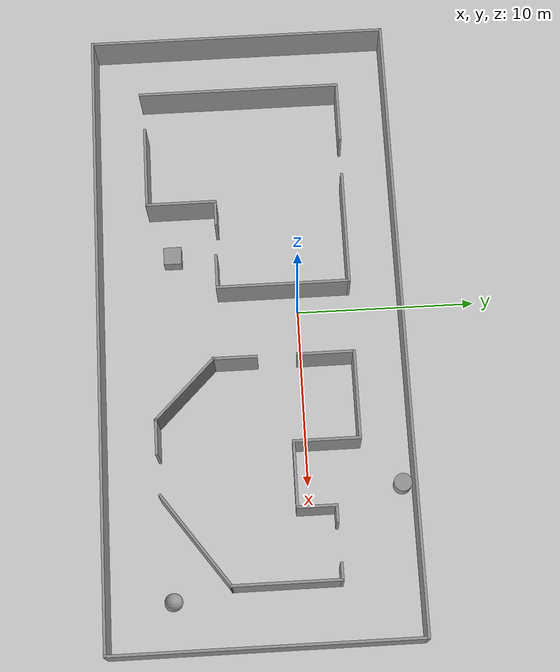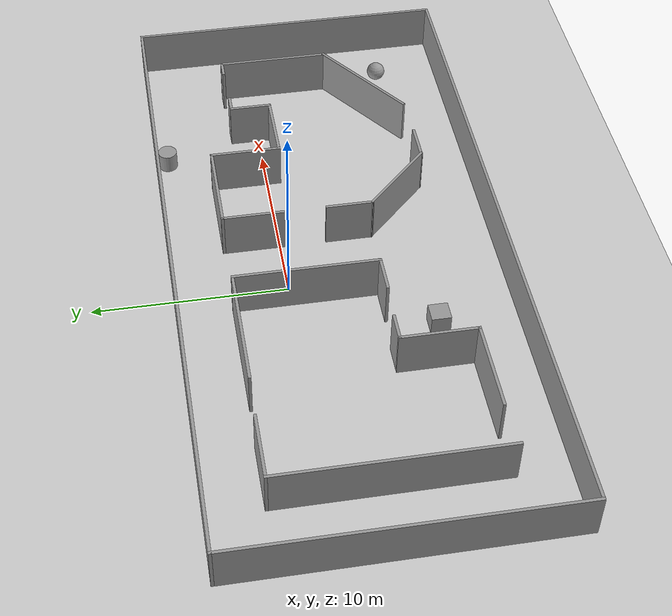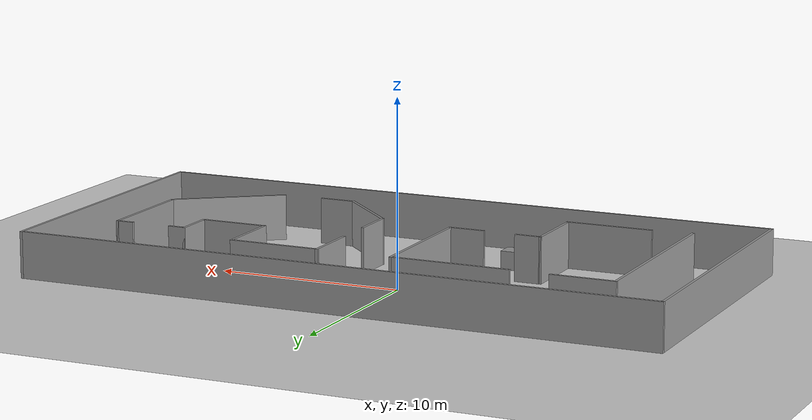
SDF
<sdf version="1.6">
 <world name="default">
  <light name="sun" type="directional">
   <pose>0 0 10 0 -0 0</pose>
   <diffuse>0.8 0.8 0.8 1</diffuse>
   <specular>0.2 0.2 0.2 1</specular>
   <attenuation>
    <range>1000</range>
    <constant>0.9</constant>
    <linear>0.01</linear>
    <quadratic>0.001</quadratic>
   </attenuation>
   <direction>-0.5 0.1 -0.9</direction>
  </light>
  <model name="ground_plane">
   <static>1</static>
   <link name="link">
    <collision name="collision">
     <geometry><plane><normal>0 0 1</normal><size>100 100</size></plane></geometry>
     <surface>
      <contact><collide_bitmask>65535</collide_bitmask></contact>
      <friction><ode><mu>100</mu><mu2>50</mu2></ode></friction>
     </surface>
    </collision>
    <visual name="visual">
     <cast_shadows>0</cast_shadows>
     <geometry><plane><normal>0 0 1</normal><size>100 100</size></plane></geometry>
     <material>
      <script><uri>file://media/materials/scripts/gazebo.material</uri><name>Gazebo/Grey</name></script>
     </material>
    </visual>
   </link>
  </model>
  <gravity>0 0 -9.8</gravity>
  <magnetic_field>6e-06 2.3e-05 -4.2e-05</magnetic_field>
  <atmosphere type="adiabatic"/>
  <physics name="default_physics" default="0" type="ode">
   <max_step_size>0.001</max_step_size>
   <real_time_factor>1</real_time_factor>
   <real_time_update_rate>1000</real_time_update_rate>
  </physics>
  <scene><ambient>0.4 0.4 0.4 1</ambient><background>0.7 0.7 0.7 1</background><shadows>1</shadows></scene>
  <audio><device>default</device></audio>
  <spherical_coordinates>
   <surface_model>EARTH_WGS84</surface_model>
   <latitude_deg>0</latitude_deg>
   <longitude_deg>0</longitude_deg>
   <elevation>0</elevation>
   <heading_deg>0</heading_deg>
  </spherical_coordinates>
  <model name="openfloorplan">
   <pose>1.2197 -2.65231 0 0 -0 0</pose>
   <link name="Wall_11">
    <collision name="Wall_11_Collision">
     <geometry><box><size>11.5 0.15 2.5</size></box></geometry>
     <pose>0 0 1.25 0 -0 0</pose>
    </collision>
    <visual name="Wall_11_Visual">
     <pose>0 0 1.25 0 -0 0</pose>
     <geometry><box><size>11.5 0.15 2.5</size></box></geometry>
     <material>
      <script><uri>file://media/materials/scripts/gazebo.material</uri><name>Gazebo/Grey</name></script>
      <ambient>1 1 1 1</ambient>
     </material>
     <meta><layer>0</layer></meta>
    </visual>
    <pose>-14.1538 -0.047052 0 0 -0 -1.5708</pose>
   </link>
   <link name="Wall_13">
    <collision name="Wall_13_Collision">
     <geometry><box><size>4.75 0.15 2.5</size></box></geometry>
     <pose>0 0 1.25 0 -0 0</pose>
    </collision>
    <visual name="Wall_13_Visual">
     <pose>0 0 1.25 0 -0 0</pose>
     <geometry><box><size>4.75 0.15 2.5</size></box></geometry>
     <material>
      <script><uri>file://media/materials/scripts/gazebo.material</uri><name>Gazebo/Grey</name></script>
      <ambient>1 1 1 1</ambient>
     </material>
     <meta><layer>0</layer></meta>
    </visual>
    <pose>-9.62061 -5.53779 0 0 -0 0</pose>
   </link>
   <link name="Wall_14">
    <collision name="Wall_14_Collision">
     <geometry><box><size>4 0.15 2.5</size></box></geometry>
     <pose>0 0 1.25 0 -0 0</pose>
    </collision>
    <visual name="Wall_14_Visual">
     <pose>0 0 1.25 0 -0 0</pose>
     <geometry><box><size>4 0.15 2.5</size></box></geometry>
     <material>
      <script><uri>file://media/materials/scripts/gazebo.material</uri><name>Gazebo/Grey</name></script>
      <ambient>1 1 1 1</ambient>
     </material>
     <meta><layer>0</layer></meta>
    </visual>
    <pose>-7.32061 -3.61279 0 0 -0 1.5708</pose>
   </link>
   <link name="Wall_16">
    <collision name="Wall_16_Collision">
     <geometry><box><size>3.5 0.15 2.5</size></box></geometry>
     <pose>0 0 1.25 0 -0 0</pose>
    </collision>
    <visual name="Wall_16_Visual">
     <pose>0 0 1.25 0 -0 0</pose>
     <geometry><box><size>3.5 0.15 2.5</size></box></geometry>
     <material>
      <script><uri>file://media/materials/scripts/gazebo.material</uri><name>Gazebo/Grey</name></script>
      <ambient>1 1 1 1</ambient>
     </material>
     <meta><layer>0</layer></meta>
    </visual>
    <pose>-12.4788 5.62795 0 0 -0 0</pose>
   </link>
   <link name="Wall_18">
    <collision name="Wall_18_Collision">
     <geometry><box><size>1.5 0.15 2.5</size></box></geometry>
     <pose>0 0 1.25 0 -0 0</pose>
    </collision>
    <visual name="Wall_18_Visual">
     <pose>0 0 1.25 0 -0 0</pose>
     <geometry><box><size>1.5 0.15 2.5</size></box></geometry>
     <material>
      <script><uri>file://media/materials/scripts/gazebo.material</uri><name>Gazebo/Grey</name></script>
      <ambient>1 1 1 1</ambient>
     </material>
     <meta><layer>0</layer></meta>
    </visual>
    <pose>-6.64561 -1.68779 0 0 -0 0</pose>
   </link>
   <link name="Wall_20">
    <collision name="Wall_20_Collision">
     <geometry><box><size>2 0.15 2.5</size></box></geometry>
     <pose>0 0 1.25 0 -0 0</pose>
    </collision>
    <visual name="Wall_20_Visual">
     <pose>0 0 1.25 0 -0 0</pose>
     <geometry><box><size>2 0.15 2.5</size></box></geometry>
     <material>
      <script><uri>file://media/materials/scripts/gazebo.material</uri><name>Gazebo/Grey</name></script>
      <ambient>1 1 1 1</ambient>
     </material>
     <meta><layer>0</layer></meta>
    </visual>
    <pose>-3.13307 -1.76936 0 0 -0 0</pose>
   </link>
   <link name="Wall_21">
    <collision name="Wall_21_Collision">
     <geometry><box><size>7.5 0.15 2.5</size></box></geometry>
     <pose>0 0 1.25 0 -0 0</pose>
    </collision>
    <visual name="Wall_21_Visual">
     <pose>0 0 1.25 0 -0 0</pose>
     <geometry><box><size>7.5 0.15 2.5</size></box></geometry>
     <material>
      <script><uri>file://media/materials/scripts/gazebo.material</uri><name>Gazebo/Grey</name></script>
      <ambient>1 1 1 1</ambient>
     </material>
     <meta><layer>0</layer></meta>
    </visual>
    <pose>-2.20806 1.90565 0 0 -0 1.5708</pose>
   </link>
   <link name="Wall_22">
    <collision name="Wall_22_Collision">
     <geometry><box><size>6.5 0.15 2.5</size></box></geometry>
     <pose>0 0 1.25 0 -0 0</pose>
    </collision>
    <visual name="Wall_22_Visual">
     <pose>0 0 1.25 0 -0 0</pose>
     <geometry><box><size>6.5 0.15 2.5</size></box></geometry>
     <material>
      <script><uri>file://media/materials/scripts/gazebo.material</uri><name>Gazebo/Grey</name></script>
      <ambient>1 1 1 1</ambient>
     </material>
     <meta><layer>0</layer></meta>
    </visual>
    <pose>-5.38307 5.58064 0 0 -0 3.14159</pose>
   </link>
   <link name="Wall_25">
    <collision name="Wall_25_Collision">
     <geometry><box><size>3.25 0.15 2.5</size></box></geometry>
     <pose>0 0 1.25 0 -0 0</pose>
    </collision>
    <visual name="Wall_25_Visual">
     <pose>0 0 1.25 0 -0 0</pose>
     <geometry><box><size>3.25 0.15 2.5</size></box></geometry>
     <material>
      <script><uri>file://media/materials/scripts/gazebo.material</uri><name>Gazebo/Grey</name></script>
      <ambient>1 1 1 1</ambient>
     </material>
     <meta><layer>0</layer></meta>
    </visual>
    <pose>1.897 4.03142 0 0 -0 -1.5708</pose>
   </link>
   <link name="Wall_27">
    <collision name="Wall_27_Collision">
     <geometry><box><size>2.5 0.15 2.5</size></box></geometry>
     <pose>0 0 1.25 0 -0 0</pose>
    </collision>
    <visual name="Wall_27_Visual">
     <pose>0 0 1.25 0 -0 0</pose>
     <geometry><box><size>2.5 0.15 2.5</size></box></geometry>
     <material>
      <script><uri>file://media/materials/scripts/gazebo.material</uri><name>Gazebo/Grey</name></script>
      <ambient>1 1 1 1</ambient>
     </material>
     <meta><layer>0</layer></meta>
    </visual>
    <pose>1.897 -0.99035 0 0 -0 -1.5708</pose>
   </link>
   <link name="Wall_28">
    <collision name="Wall_28_Collision">
     <geometry><box><size>4.75 0.15 2.5</size></box></geometry>
     <pose>0 0 1.25 0 -0 0</pose>
    </collision>
    <visual name="Wall_28_Visual">
     <pose>0 0 1.25 0 -0 0</pose>
     <geometry><box><size>4.75 0.15 2.5</size></box></geometry>
     <material>
      <script><uri>file://media/materials/scripts/gazebo.material</uri><name>Gazebo/Grey</name></script>
      <ambient>1 1 1 1</ambient>
     </material>
     <meta><layer>0</layer></meta>
    </visual>
    <pose>3.52334 -3.7917 0 0 -0 -0.785398</pose>
   </link>
   <link name="Wall_33">
    <collision name="Wall_33_Collision">
     <geometry><box><size>6 0.15 2.5</size></box></geometry>
     <pose>0 0 1.25 0 -0 0</pose>
    </collision>
    <visual name="Wall_33_Visual">
     <pose>0 0 1.25 0 -0 0</pose>
     <geometry><box><size>6 0.15 2.5</size></box></geometry>
     <material>
      <script><uri>file://media/materials/scripts/gazebo.material</uri><name>Gazebo/Grey</name></script>
      <ambient>1 1 1 1</ambient>
     </material>
     <meta><layer>0</layer></meta>
    </visual>
    <pose>14.3053 1.21706 0 0 -0 1.5708</pose>
   </link>
   <link name="Wall_36">
    <collision name="Wall_36_Collision">
     <geometry><box><size>2 0.15 2.5</size></box></geometry>
     <pose>0 0 1.25 0 -0 0</pose>
    </collision>
    <visual name="Wall_36_Visual">
     <pose>0 0 1.25 0 -0 0</pose>
     <geometry><box><size>2 0.15 2.5</size></box></geometry>
     <material>
      <script><uri>file://media/materials/scripts/gazebo.material</uri><name>Gazebo/Grey</name></script>
      <ambient>1 1 1 1</ambient>
     </material>
     <meta><layer>0</layer></meta>
    </visual>
    <pose>6.07469 -5.41804 0 0 -0 0</pose>
   </link>
   <link name="Wall_38">
    <collision name="Wall_38_Collision">
     <geometry><box><size>6.31845 0.15 2.5</size></box></geometry>
     <pose>0 0 1.25 0 -0 0</pose>
    </collision>
    <visual name="Wall_38_Visual">
     <pose>0 0 1.25 0 -0 0</pose>
     <geometry><box><size>6.31845 0.15 2.5</size></box></geometry>
     <material>
      <script><uri>file://media/materials/scripts/gazebo.material</uri><name>Gazebo/Grey</name></script>
      <ambient>1 1 1 1</ambient>
     </material>
     <meta><layer>0</layer></meta>
    </visual>
    <pose>11.7998 -3.50656 0 0 -0 0.622621</pose>
   </link>
   <link name="Wall_40">
    <collision name="Wall_40_Collision">
     <geometry><box><size>5 0.15 2.5</size></box></geometry>
     <pose>0 0 1.25 0 -0 0</pose>
    </collision>
    <visual name="Wall_40_Visual">
     <pose>0 0 1.25 0 -0 0</pose>
     <geometry><box><size>5 0.15 2.5</size></box></geometry>
     <material>
      <script><uri>file://media/materials/scripts/gazebo.material</uri><name>Gazebo/Grey</name></script>
      <ambient>1 1 1 1</ambient>
     </material>
     <meta><layer>0</layer></meta>
    </visual>
    <pose>4.322 5.58142 0 0 -0 0</pose>
   </link>
   <link name="Wall_41">
    <collision name="Wall_41_Collision">
     <geometry><box><size>3.75 0.15 2.5</size></box></geometry>
     <pose>0 0 1.25 0 -0 0</pose>
    </collision>
    <visual name="Wall_41_Visual">
     <pose>0 0 1.25 0 -0 0</pose>
     <geometry><box><size>3.75 0.15 2.5</size></box></geometry>
     <material>
      <script><uri>file://media/materials/scripts/gazebo.material</uri><name>Gazebo/Grey</name></script>
      <ambient>1 1 1 1</ambient>
     </material>
     <meta><layer>0</layer></meta>
    </visual>
    <pose>6.747 3.78142 0 0 -0 -1.5708</pose>
   </link>
   <link name="Wall_42">
    <collision name="Wall_42_Collision">
     <geometry><box><size>3.75 0.15 2.5</size></box></geometry>
     <pose>0 0 1.25 0 -0 0</pose>
    </collision>
    <visual name="Wall_42_Visual">
     <pose>0 0 1.25 0 -0 0</pose>
     <geometry><box><size>3.75 0.15 2.5</size></box></geometry>
     <material>
      <script><uri>file://media/materials/scripts/gazebo.material</uri><name>Gazebo/Grey</name></script>
      <ambient>1 1 1 1</ambient>
     </material>
     <meta><layer>0</layer></meta>
    </visual>
    <pose>8.547 1.98142 0 0 -0 0</pose>
   </link>
   <link name="Wall_43">
    <collision name="Wall_43_Collision">
     <geometry><box><size>2.25 0.15 2.5</size></box></geometry>
     <pose>0 0 1.25 0 -0 0</pose>
    </collision>
    <visual name="Wall_43_Visual">
     <pose>0 0 1.25 0 -0 0</pose>
     <geometry><box><size>2.25 0.15 2.5</size></box></geometry>
     <material>
      <script><uri>file://media/materials/scripts/gazebo.material</uri><name>Gazebo/Grey</name></script>
      <ambient>1 1 1 1</ambient>
     </material>
     <meta><layer>0</layer></meta>
    </visual>
    <pose>10.347 3.03142 0 0 -0 1.5708</pose>
   </link>
   <link name="Wall_44">
    <collision name="Wall_44_Collision">
     <geometry><box><size>1 0.15 2.5</size></box></geometry>
     <pose>0 0 1.25 0 -0 0</pose>
    </collision>
    <visual name="Wall_44_Visual">
     <pose>0 0 1.25 0 -0 0</pose>
     <geometry><box><size>1 0.15 2.5</size></box></geometry>
     <material>
      <script><uri>file://media/materials/scripts/gazebo.material</uri><name>Gazebo/Grey</name></script>
      <ambient>1 1 1 1</ambient>
     </material>
     <meta><layer>0</layer></meta>
    </visual>
    <pose>10.772 4.08142 0 0 -0 0</pose>
   </link>
   <link name="Wall_46">
    <collision name="Wall_46_Collision">
     <geometry><box><size>1 0.15 2.5</size></box></geometry>
     <pose>0 0 1.25 0 -0 0</pose>
    </collision>
    <visual name="Wall_46_Visual">
     <pose>0 0 1.25 0 -0 0</pose>
     <geometry><box><size>1 0.15 2.5</size></box></geometry>
     <material>
      <script><uri>file://media/materials/scripts/gazebo.material</uri><name>Gazebo/Grey</name></script>
      <ambient>1 1 1 1</ambient>
     </material>
     <meta><layer>0</layer></meta>
    </visual>
    <pose>13.8803 4.14206 0 0 -0 3.14159</pose>
   </link>
   <link name="Wall_5">
    <collision name="Wall_5_Collision">
     <geometry><box><size>17 0.15 2.5</size></box></geometry>
     <pose>0 0 1.25 0 -0 0</pose>
    </collision>
    <visual name="Wall_5_Visual">
     <pose>0 0 1.25 0 -0 0</pose>
     <geometry><box><size>17 0.15 2.5</size></box></geometry>
     <material>
      <script><uri>file://media/materials/scripts/gazebo.material</uri><name>Gazebo/Grey</name></script>
      <ambient>1 1 1 1</ambient>
     </material>
     <meta><layer>0</layer></meta>
    </visual>
    <pose>17.55 -0 0 0 -0 1.5708</pose>
   </link>
   <link name="Wall_6">
    <collision name="Wall_6_Collision">
     <geometry><box><size>35.25 0.15 2.5</size></box></geometry>
     <pose>0 0 1.25 0 -0 0</pose>
    </collision>
    <visual name="Wall_6_Visual">
     <pose>0 0 1.25 0 -0 0</pose>
     <geometry><box><size>35.25 0.15 2.5</size></box></geometry>
     <material>
      <script><uri>file://media/materials/scripts/gazebo.material</uri><name>Gazebo/Grey</name></script>
      <ambient>1 1 1 1</ambient>
     </material>
     <meta><layer>0</layer></meta>
    </visual>
    <pose>0 8.425 0 0 -0 3.14159</pose>
   </link>
   <link name="Wall_8">
    <collision name="Wall_8_Collision">
     <geometry><box><size>17 0.15 2.5</size></box></geometry>
     <pose>0 0 1.25 0 -0 0</pose>
    </collision>
    <visual name="Wall_8_Visual">
     <pose>0 0 1.25 0 -0 0</pose>
     <geometry><box><size>17 0.15 2.5</size></box></geometry>
     <material>
      <script><uri>file://media/materials/scripts/gazebo.material</uri><name>Gazebo/Grey</name></script>
      <ambient>1 1 1 1</ambient>
     </material>
     <meta><layer>0</layer></meta>
    </visual>
    <pose>-17.55 -0 0 0 -0 -1.5708</pose>
   </link>
   <link name="Wall_9">
    <collision name="Wall_9_Collision">
     <geometry><box><size>35.25 0.15 2.5</size></box></geometry>
     <pose>0 0 1.25 0 -0 0</pose>
    </collision>
    <visual name="Wall_9_Visual">
     <pose>0 0 1.25 0 -0 0</pose>
     <geometry><box><size>35.25 0.15 2.5</size></box></geometry>
     <material>
      <script><uri>file://media/materials/scripts/gazebo.material</uri><name>Gazebo/Grey</name></script>
      <ambient>1 1 1 1</ambient>
     </material>
     <meta><layer>0</layer></meta>
    </visual>
    <pose>0 -8.425 0 0 -0 0</pose>
   </link>
   <static>1</static>
  </model>
  <model name="floorplan2">
   <link name="link_0">
    <inertial>
     <mass>1</mass>
     <inertia>
      <ixx>0.166667</ixx>
      <ixy>0</ixy>
      <ixz>0</ixz>
      <iyy>0.166667</iyy>
      <iyz>0</iyz>
      <izz>0.166667</izz>
     </inertia>
    </inertial>
    <pose>-11.0875 -3.83524 0 0 -0 0</pose>
    <visual name="visual">
     <geometry><box><size>1 1 1</size></box></geometry>
     <material>
      <lighting>1</lighting>
      <script><uri>file://media/materials/scripts/gazebo.material</uri><name>Gazebo/Grey</name></script>
     </material>
    </visual>
    <collision name="collision">
     <geometry><box><size>1 1 1</size></box></geometry>
     <surface>
      <friction>
       <ode><mu>1</mu><mu2>1</mu2><fdir1>0 0 0</fdir1><slip1>0</slip1><slip2>0</slip2></ode>
       <torsional>
        <coefficient>1</coefficient>
        <patch_radius>0</patch_radius>
        <surface_radius>0</surface_radius>
        <use_patch_radius>1</use_patch_radius>
        <ode><slip>0</slip></ode>
       </torsional>
      </friction>
      <bounce><restitution_coefficient>0</restitution_coefficient><threshold>1e+06</threshold></bounce>
      <contact>
       <collide_without_contact>0</collide_without_contact>
       <collide_without_contact_bitmask>1</collide_without_contact_bitmask>
       <collide_bitmask>1</collide_bitmask>
       <ode>
        <soft_cfm>0</soft_cfm>
        <soft_erp>0.2</soft_erp>
        <kp>1e+13</kp>
        <kd>1</kd>
        <max_vel>0.01</max_vel>
        <min_depth>0</min_depth>
       </ode>
       <bullet>
        <split_impulse>1</split_impulse>
        <split_impulse_penetration_threshold>-0.01</split_impulse_penetration_threshold>
        <soft_cfm>0</soft_cfm>
        <soft_erp>0.2</soft_erp>
        <kp>1e+13</kp>
        <kd>1</kd>
       </bullet>
      </contact>
     </surface>
    </collision>
   </link>
   <link name="link_2">
    <inertial>
     <mass>1</mass>
     <inertia><ixx>0.1</ixx><ixy>0</ixy><ixz>0</ixz><iyy>0.1</iyy><iyz>0</iyz><izz>0.1</izz></inertia>
    </inertial>
    <pose>8.41124 -4.44648 0 0 -0 0</pose>
    <visual name="visual">
     <geometry><sphere><radius>0.5</radius></sphere></geometry>
     <material>
      <lighting>1</lighting>
      <script><uri>file://media/materials/scripts/gazebo.material</uri><name>Gazebo/Grey</name></script>
     </material>
    </visual>
    <collision name="collision">
     <geometry><sphere><radius>0.5</radius></sphere></geometry>
     <surface>
      <friction>
       <ode><mu>1</mu><mu2>1</mu2><fdir1>0 0 0</fdir1><slip1>0</slip1><slip2>0</slip2></ode>
       <torsional>
        <coefficient>1</coefficient>
        <patch_radius>0</patch_radius>
        <surface_radius>0</surface_radius>
        <use_patch_radius>1</use_patch_radius>
        <ode><slip>0</slip></ode>
       </torsional>
      </friction>
      <bounce><restitution_coefficient>0</restitution_coefficient><threshold>1e+06</threshold></bounce>
      <contact>
       <collide_without_contact>0</collide_without_contact>
       <collide_without_contact_bitmask>1</collide_without_contact_bitmask>
       <collide_bitmask>1</collide_bitmask>
       <ode>
        <soft_cfm>0</soft_cfm>
        <soft_erp>0.2</soft_erp>
        <kp>1e+13</kp>
        <kd>1</kd>
        <max_vel>0.01</max_vel>
        <min_depth>0</min_depth>
       </ode>
       <bullet>
        <split_impulse>1</split_impulse>
        <split_impulse_penetration_threshold>-0.01</split_impulse_penetration_threshold>
        <soft_cfm>0</soft_cfm>
        <soft_erp>0.2</soft_erp>
        <kp>1e+13</kp>
        <kd>1</kd>
       </bullet>
      </contact>
     </surface>
    </collision>
   </link>
   <link name="link_3">
    <inertial>
     <mass>1</mass>
     <inertia><ixx>0.145833</ixx><ixy>0</ixy><ixz>0</ixz><iyy>0.145833</iyy><iyz>0</iyz><izz>0.125</izz></inertia>
    </inertial>
    <pose>2.67628 8.28172 0 0 -0 0</pose>
    <visual name="visual">
     <geometry><cylinder><radius>0.5</radius><length>1</length></cylinder></geometry>
     <material>
      <lighting>1</lighting>
      <script><uri>file://media/materials/scripts/gazebo.material</uri><name>Gazebo/Grey</name></script>
     </material>
    </visual>
    <collision name="collision">
     <geometry><cylinder><radius>0.5</radius><length>1</length></cylinder></geometry>
     <surface>
      <friction>
       <ode><mu>1</mu><mu2>1</mu2><fdir1>0 0 0</fdir1><slip1>0</slip1><slip2>0</slip2></ode>
       <torsional>
        <coefficient>1</coefficient>
        <patch_radius>0</patch_radius>
        <surface_radius>0</surface_radius>
        <use_patch_radius>1</use_patch_radius>
        <ode><slip>0</slip></ode>
       </torsional>
      </friction>
      <bounce><restitution_coefficient>0</restitution_coefficient><threshold>1e+06</threshold></bounce>
      <contact>
       <collide_without_contact>0</collide_without_contact>
       <collide_without_contact_bitmask>1</collide_without_contact_bitmask>
       <collide_bitmask>1</collide_bitmask>
       <ode>
        <soft_cfm>0</soft_cfm>
        <soft_erp>0.2</soft_erp>
        <kp>1e+13</kp>
        <kd>1</kd>
        <max_vel>0.01</max_vel>
        <min_depth>0</min_depth>
       </ode>
       <bullet>
        <split_impulse>1</split_impulse>
        <split_impulse_penetration_threshold>-0.01</split_impulse_penetration_threshold>
        <soft_cfm>0</soft_cfm>
        <soft_erp>0.2</soft_erp>
        <kp>1e+13</kp>
        <kd>1</kd>
       </bullet>
      </contact>
     </surface>
    </collision>
   </link>
   <static>0</static>
   <pose>7.5808 -3.10887 0.5 0 -0 0</pose>
  </model>
 </world>
</sdf>
